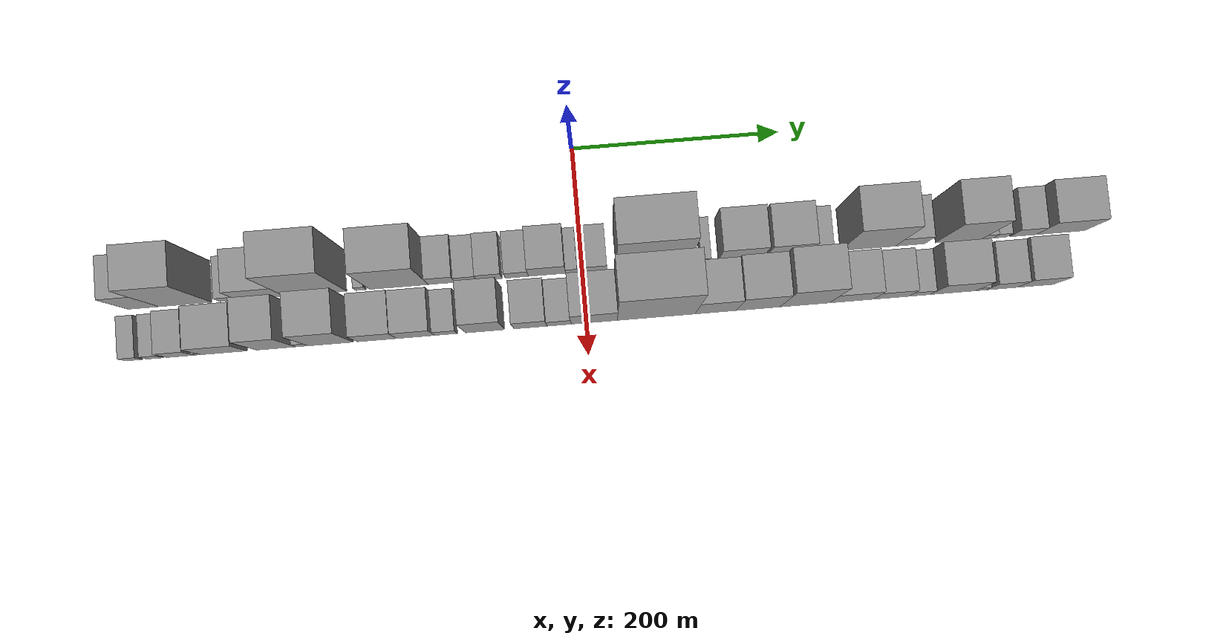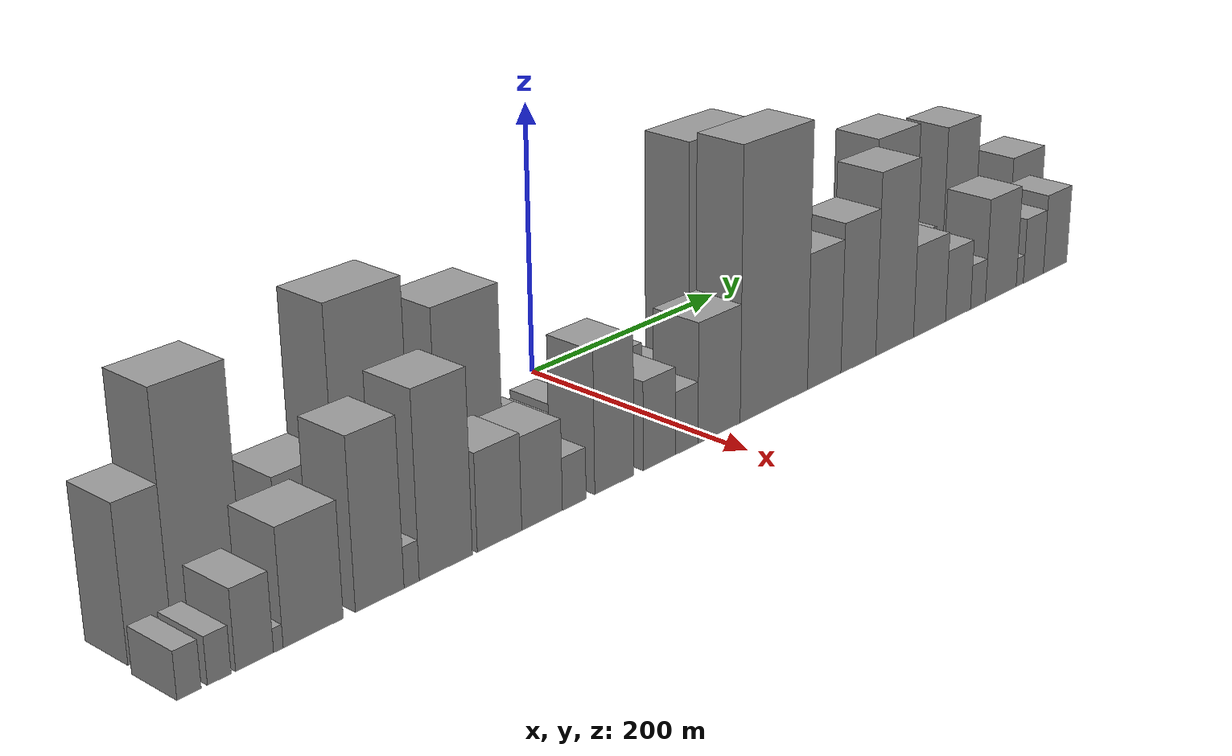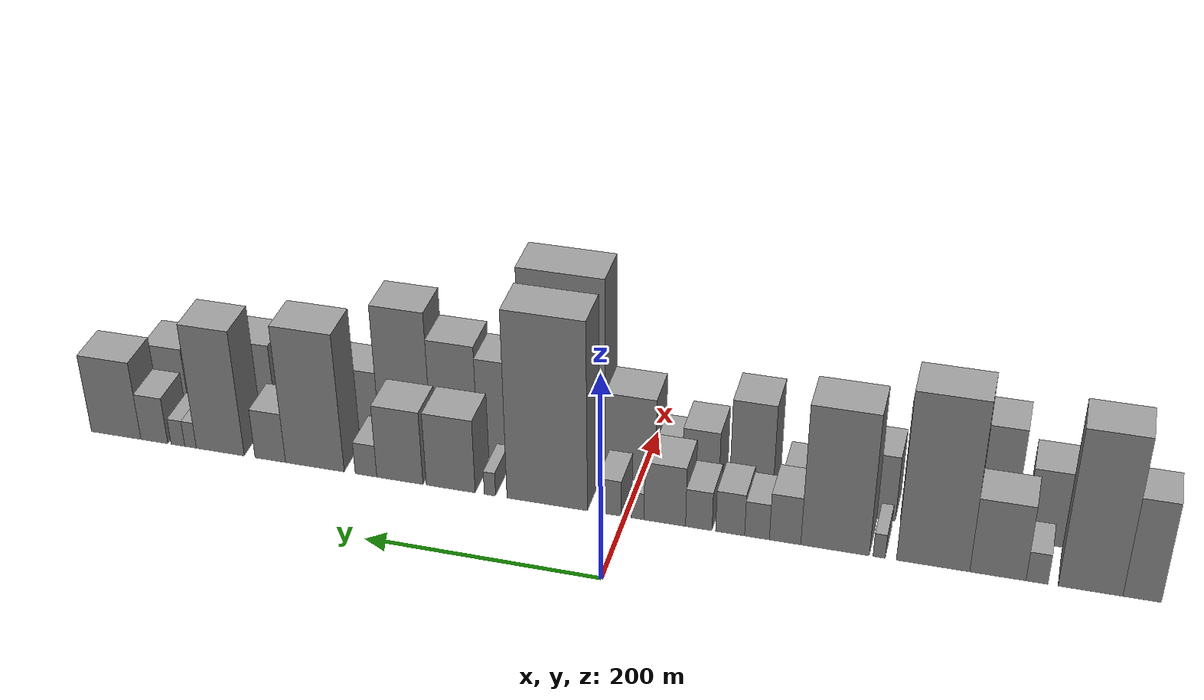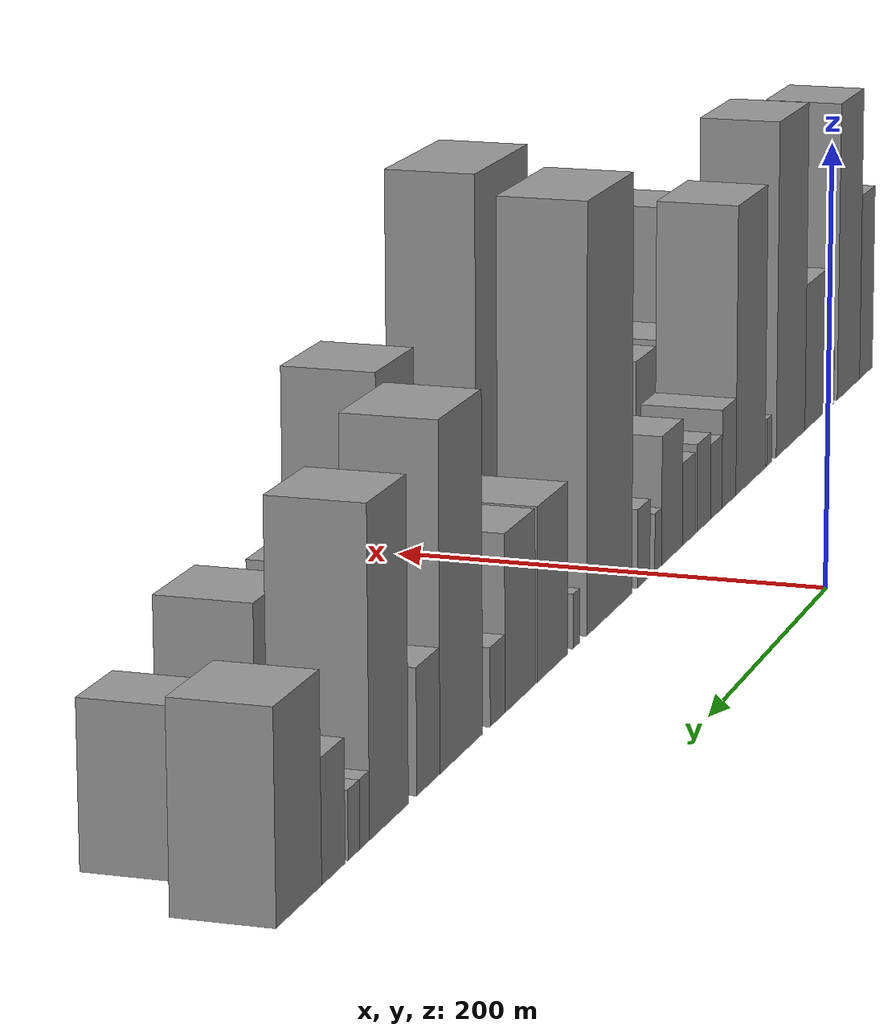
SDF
<sdf version="1.6">
 <world name="default">
  <scene>
   <sky><clouds><speed>12</speed></clouds></sky>
   <ambient>0.4 0.4 0.4 1</ambient>
   <background>0.7 0.7 0.7 1</background>
   <shadows>1</shadows>
  </scene>
  <gravity>0 0 -9.8066</gravity>
  <magnetic_field>6e-06 2.3e-05 -4.2e-05</magnetic_field>
  <physics default="0" name="default_physics" type="ode">
   <ode>
    <solver>
     <type>quick</type>
     <iters>10</iters>
     <sor>1.0</sor>
     <use_dynamic_moi_rescaling>0</use_dynamic_moi_rescaling>
    </solver>
    <constraints>
     <cfm>0</cfm>
     <erp>0.2</erp>
     <contact_max_correcting_vel>100</contact_max_correcting_vel>
     <contact_surface_layer>0.001</contact_surface_layer>
    </constraints>
   </ode>
   <max_step_size>0.004</max_step_size>
   <real_time_factor>1</real_time_factor>
   <real_time_update_rate>250</real_time_update_rate>
  </physics>
  <light name="sun" type="directional">
   <pose>0 0 10 0 0 0</pose>
   <diffuse>0.8 0.8 0.8 1</diffuse>
   <specular>0.2 0.2 0.2 1</specular>
   <attenuation>
    <range>1000</range>
    <constant>0.9</constant>
    <linear>0.01</linear>
    <quadratic>0.001</quadratic>
   </attenuation>
   <direction>-0.5 0.1 -0.9</direction>
  </light>
  <model name="building_1">
   <static>1</static>
   <pose>100.0000 -419.1449 0 0.000000 0.000000 0.000000</pose>
   <link name="link">
    <pose>0 0 49.50 0 0 0</pose>
    <collision name="collision"><geometry><box><size>40.0000 29.7102 99.0000</size></box></geometry></collision>
    <visual name="visual">
     <cast_shadows>0</cast_shadows>
     <geometry><box><size>40.0000 29.7102 99.0000</size></box></geometry>
     <material>
      <script>
       <uri>model://grey_wall/materials/scripts</uri>
       <uri>model://grey_wall/materials/textures</uri>
       <name>vrc/grey_wall</name>
      </script>
     </material>
    </visual>
   </link>
  </model>
  <model name="building_2">
   <static>1</static>
   <pose>100.0000 -379.1025 0 0.000000 0.000000 0.000000</pose>
   <link name="link">
    <pose>0 0 78.00 0 0 0</pose>
    <collision name="collision"><geometry><box><size>40.0000 50.3746 156.0000</size></box></geometry></collision>
    <visual name="visual">
     <cast_shadows>0</cast_shadows>
     <geometry><box><size>40.0000 50.3746 156.0000</size></box></geometry>
     <material>
      <script>
       <uri>model://grey_wall/materials/scripts</uri>
       <uri>model://grey_wall/materials/textures</uri>
       <name>vrc/grey_wall</name>
      </script>
     </material>
    </visual>
   </link>
  </model>
  <model name="building_3">
   <static>1</static>
   <pose>100.0000 -337.2954 0 0.000000 0.000000 0.000000</pose>
   <link name="link">
    <pose>0 0 15.00 0 0 0</pose>
    <collision name="collision"><geometry><box><size>40.0000 17.2396 30.0000</size></box></geometry></collision>
    <visual name="visual">
     <cast_shadows>0</cast_shadows>
     <geometry><box><size>40.0000 17.2396 30.0000</size></box></geometry>
     <material>
      <script>
       <uri>model://grey_wall/materials/scripts</uri>
       <uri>model://grey_wall/materials/textures</uri>
       <name>vrc/grey_wall</name>
      </script>
     </material>
    </visual>
   </link>
  </model>
  <model name="building_4">
   <static>1</static>
   <pose>100.0000 -306.3645 0 0.000000 0.000000 0.000000</pose>
   <link name="link">
    <pose>0 0 37.50 0 0 0</pose>
    <collision name="collision"><geometry><box><size>40.0000 44.6222 75.0000</size></box></geometry></collision>
    <visual name="visual">
     <cast_shadows>0</cast_shadows>
     <geometry><box><size>40.0000 44.6222 75.0000</size></box></geometry>
     <material>
      <script>
       <uri>model://grey_wall/materials/scripts</uri>
       <uri>model://grey_wall/materials/textures</uri>
       <name>vrc/grey_wall</name>
      </script>
     </material>
    </visual>
   </link>
  </model>
  <model name="building_5">
   <static>1</static>
   <pose>100.0000 -254.5861 0 0.000000 0.000000 0.000000</pose>
   <link name="link">
    <pose>0 0 84.00 0 0 0</pose>
    <collision name="collision"><geometry><box><size>40.0000 58.9345 168.0000</size></box></geometry></collision>
    <visual name="visual">
     <cast_shadows>0</cast_shadows>
     <geometry><box><size>40.0000 58.9345 168.0000</size></box></geometry>
     <material>
      <script>
       <uri>model://grey_wall/materials/scripts</uri>
       <uri>model://grey_wall/materials/textures</uri>
       <name>vrc/grey_wall</name>
      </script>
     </material>
    </visual>
   </link>
  </model>
  <model name="building_6">
   <static>1</static>
   <pose>100.0000 -211.1218 0 0.000000 0.000000 0.000000</pose>
   <link name="link">
    <pose>0 0 12.00 0 0 0</pose>
    <collision name="collision"><geometry><box><size>40.0000 9.9941 24.0000</size></box></geometry></collision>
    <visual name="visual">
     <cast_shadows>0</cast_shadows>
     <geometry><box><size>40.0000 9.9941 24.0000</size></box></geometry>
     <material>
      <script>
       <uri>model://grey_wall/materials/scripts</uri>
       <uri>model://grey_wall/materials/textures</uri>
       <name>vrc/grey_wall</name>
      </script>
     </material>
    </visual>
   </link>
  </model>
  <model name="building_7">
   <static>1</static>
   <pose>100.0000 -175.0322 0 0.000000 0.000000 0.000000</pose>
   <link name="link">
    <pose>0 0 70.50 0 0 0</pose>
    <collision name="collision"><geometry><box><size>40.0000 56.1850 141.0000</size></box></geometry></collision>
    <visual name="visual">
     <cast_shadows>0</cast_shadows>
     <geometry><box><size>40.0000 56.1850 141.0000</size></box></geometry>
     <material>
      <script>
       <uri>model://grey_wall/materials/scripts</uri>
       <uri>model://grey_wall/materials/textures</uri>
       <name>vrc/grey_wall</name>
      </script>
     </material>
    </visual>
   </link>
  </model>
  <model name="building_8">
   <static>1</static>
   <pose>100.0000 -133.9525 0 0.000000 0.000000 0.000000</pose>
   <link name="link">
    <pose>0 0 24.00 0 0 0</pose>
    <collision name="collision"><geometry><box><size>40.0000 25.9746 48.0000</size></box></geometry></collision>
    <visual name="visual">
     <cast_shadows>0</cast_shadows>
     <geometry><box><size>40.0000 25.9746 48.0000</size></box></geometry>
     <material>
      <script>
       <uri>model://grey_wall/materials/scripts</uri>
       <uri>model://grey_wall/materials/textures</uri>
       <name>vrc/grey_wall</name>
      </script>
     </material>
    </visual>
   </link>
  </model>
  <model name="building_9">
   <static>1</static>
   <pose>100.0000 -110.6520 0 0.000000 0.000000 0.000000</pose>
   <link name="link">
    <pose>0 0 18.00 0 0 0</pose>
    <collision name="collision"><geometry><box><size>40.0000 20.6263 36.0000</size></box></geometry></collision>
    <visual name="visual">
     <cast_shadows>0</cast_shadows>
     <geometry><box><size>40.0000 20.6263 36.0000</size></box></geometry>
     <material>
      <script>
       <uri>model://grey_wall/materials/scripts</uri>
       <uri>model://grey_wall/materials/textures</uri>
       <name>vrc/grey_wall</name>
      </script>
     </material>
    </visual>
   </link>
  </model>
  <model name="building_10">
   <static>1</static>
   <pose>100.0000 -88.2212 0 0.000000 0.000000 0.000000</pose>
   <link name="link">
    <pose>0 0 21.00 0 0 0</pose>
    <collision name="collision"><geometry><box><size>40.0000 24.2351 42.0000</size></box></geometry></collision>
    <visual name="visual">
     <cast_shadows>0</cast_shadows>
     <geometry><box><size>40.0000 24.2351 42.0000</size></box></geometry>
     <material>
      <script>
       <uri>model://grey_wall/materials/scripts</uri>
       <uri>model://grey_wall/materials/textures</uri>
       <name>vrc/grey_wall</name>
      </script>
     </material>
    </visual>
   </link>
  </model>
  <model name="building_11">
   <static>1</static>
   <pose>100.0000 -61.9417 0 0.000000 0.000000 0.000000</pose>
   <link name="link">
    <pose>0 0 19.50 0 0 0</pose>
    <collision name="collision"><geometry><box><size>40.0000 22.3239 39.0000</size></box></geometry></collision>
    <visual name="visual">
     <cast_shadows>0</cast_shadows>
     <geometry><box><size>40.0000 22.3239 39.0000</size></box></geometry>
     <material>
      <script>
       <uri>model://grey_wall/materials/scripts</uri>
       <uri>model://grey_wall/materials/textures</uri>
       <name>vrc/grey_wall</name>
      </script>
     </material>
    </visual>
   </link>
  </model>
  <model name="building_12">
   <static>1</static>
   <pose>100.0000 -33.1645 0 0.000000 0.000000 0.000000</pose>
   <link name="link">
    <pose>0 0 30.00 0 0 0</pose>
    <collision name="collision"><geometry><box><size>40.0000 35.2304 60.0000</size></box></geometry></collision>
    <visual name="visual">
     <cast_shadows>0</cast_shadows>
     <geometry><box><size>40.0000 35.2304 60.0000</size></box></geometry>
     <material>
      <script>
       <uri>model://grey_wall/materials/scripts</uri>
       <uri>model://grey_wall/materials/textures</uri>
       <name>vrc/grey_wall</name>
      </script>
     </material>
    </visual>
   </link>
  </model>
  <model name="building_13">
   <static>1</static>
   <pose>100.0000 -9.8632 0 0.000000 0.000000 0.000000</pose>
   <link name="link">
    <pose>0 0 13.50 0 0 0</pose>
    <collision name="collision"><geometry><box><size>40.0000 11.3722 27.0000</size></box></geometry></collision>
    <visual name="visual">
     <cast_shadows>0</cast_shadows>
     <geometry><box><size>40.0000 11.3722 27.0000</size></box></geometry>
     <material>
      <script>
       <uri>model://grey_wall/materials/scripts</uri>
       <uri>model://grey_wall/materials/textures</uri>
       <name>vrc/grey_wall</name>
      </script>
     </material>
    </visual>
   </link>
  </model>
  <model name="building_14">
   <static>1</static>
   <pose>100.0000 13.8502 0 0.000000 0.000000 0.000000</pose>
   <link name="link">
    <pose>0 0 18.00 0 0 0</pose>
    <collision name="collision"><geometry><box><size>40.0000 20.0548 36.0000</size></box></geometry></collision>
    <visual name="visual">
     <cast_shadows>0</cast_shadows>
     <geometry><box><size>40.0000 20.0548 36.0000</size></box></geometry>
     <material>
      <script>
       <uri>model://grey_wall/materials/scripts</uri>
       <uri>model://grey_wall/materials/textures</uri>
       <name>vrc/grey_wall</name>
      </script>
     </material>
    </visual>
   </link>
  </model>
  <model name="building_15">
   <static>1</static>
   <pose>100.0000 67.8860 0 0.000000 0.000000 0.000000</pose>
   <link name="link">
    <pose>0 0 94.50 0 0 0</pose>
    <collision name="collision"><geometry><box><size>40.0000 70.0167 189.0000</size></box></geometry></collision>
    <visual name="visual">
     <cast_shadows>0</cast_shadows>
     <geometry><box><size>40.0000 70.0167 189.0000</size></box></geometry>
     <material>
      <script>
       <uri>model://grey_wall/materials/scripts</uri>
       <uri>model://grey_wall/materials/textures</uri>
       <name>vrc/grey_wall</name>
      </script>
     </material>
    </visual>
   </link>
  </model>
  <model name="building_16">
   <static>1</static>
   <pose>100.0000 117.8698 0 0.000000 0.000000 0.000000</pose>
   <link name="link">
    <pose>0 0 12.00 0 0 0</pose>
    <collision name="collision"><geometry><box><size>40.0000 9.9509 24.0000</size></box></geometry></collision>
    <visual name="visual">
     <cast_shadows>0</cast_shadows>
     <geometry><box><size>40.0000 9.9509 24.0000</size></box></geometry>
     <material>
      <script>
       <uri>model://grey_wall/materials/scripts</uri>
       <uri>model://grey_wall/materials/textures</uri>
       <name>vrc/grey_wall</name>
      </script>
     </material>
    </visual>
   </link>
  </model>
  <model name="building_17">
   <static>1</static>
   <pose>100.0000 152.5142 0 0.000000 0.000000 0.000000</pose>
   <link name="link">
    <pose>0 0 37.50 0 0 0</pose>
    <collision name="collision"><geometry><box><size>40.0000 43.3380 75.0000</size></box></geometry></collision>
    <visual name="visual">
     <cast_shadows>0</cast_shadows>
     <geometry><box><size>40.0000 43.3380 75.0000</size></box></geometry>
     <material>
      <script>
       <uri>model://grey_wall/materials/scripts</uri>
       <uri>model://grey_wall/materials/textures</uri>
       <name>vrc/grey_wall</name>
      </script>
     </material>
    </visual>
   </link>
  </model>
  <model name="building_18">
   <static>1</static>
   <pose>100.0000 197.8956 0 0.000000 0.000000 0.000000</pose>
   <link name="link">
    <pose>0 0 37.50 0 0 0</pose>
    <collision name="collision"><geometry><box><size>40.0000 41.4249 75.0000</size></box></geometry></collision>
    <visual name="visual">
     <cast_shadows>0</cast_shadows>
     <geometry><box><size>40.0000 41.4249 75.0000</size></box></geometry>
     <material>
      <script>
       <uri>model://grey_wall/materials/scripts</uri>
       <uri>model://grey_wall/materials/textures</uri>
       <name>vrc/grey_wall</name>
      </script>
     </material>
    </visual>
   </link>
  </model>
  <model name="building_19">
   <static>1</static>
   <pose>100.0000 228.3364 0 0.000000 0.000000 0.000000</pose>
   <link name="link">
    <pose>0 0 16.50 0 0 0</pose>
    <collision name="collision"><geometry><box><size>40.0000 19.4566 33.0000</size></box></geometry></collision>
    <visual name="visual">
     <cast_shadows>0</cast_shadows>
     <geometry><box><size>40.0000 19.4566 33.0000</size></box></geometry>
     <material>
      <script>
       <uri>model://grey_wall/materials/scripts</uri>
       <uri>model://grey_wall/materials/textures</uri>
       <name>vrc/grey_wall</name>
      </script>
     </material>
    </visual>
   </link>
  </model>
  <model name="building_20">
   <static>1</static>
   <pose>100.0000 274.8976 0 0.000000 0.000000 0.000000</pose>
   <link name="link">
    <pose>0 0 70.50 0 0 0</pose>
    <collision name="collision"><geometry><box><size>40.0000 53.6659 141.0000</size></box></geometry></collision>
    <visual name="visual">
     <cast_shadows>0</cast_shadows>
     <geometry><box><size>40.0000 53.6659 141.0000</size></box></geometry>
     <material>
      <script>
       <uri>model://grey_wall/materials/scripts</uri>
       <uri>model://grey_wall/materials/textures</uri>
       <name>vrc/grey_wall</name>
      </script>
     </material>
    </visual>
   </link>
  </model>
  <model name="building_21">
   <static>1</static>
   <pose>100.0000 315.7406 0 0.000000 0.000000 0.000000</pose>
   <link name="link">
    <pose>0 0 25.50 0 0 0</pose>
    <collision name="collision"><geometry><box><size>40.0000 28.0201 51.0000</size></box></geometry></collision>
    <visual name="visual">
     <cast_shadows>0</cast_shadows>
     <geometry><box><size>40.0000 28.0201 51.0000</size></box></geometry>
     <material>
      <script>
       <uri>model://grey_wall/materials/scripts</uri>
       <uri>model://grey_wall/materials/textures</uri>
       <name>vrc/grey_wall</name>
      </script>
     </material>
    </visual>
   </link>
  </model>
  <model name="building_22">
   <static>1</static>
   <pose>100.0000 362.1155 0 0.000000 0.000000 0.000000</pose>
   <link name="link">
    <pose>0 0 64.50 0 0 0</pose>
    <collision name="collision"><geometry><box><size>40.0000 44.7296 129.0000</size></box></geometry></collision>
    <visual name="visual">
     <cast_shadows>0</cast_shadows>
     <geometry><box><size>40.0000 44.7296 129.0000</size></box></geometry>
     <material>
      <script>
       <uri>model://grey_wall/materials/scripts</uri>
       <uri>model://grey_wall/materials/textures</uri>
       <name>vrc/grey_wall</name>
      </script>
     </material>
    </visual>
   </link>
  </model>
  <model name="building_23">
   <static>1</static>
   <pose>100.0000 389.9124 0 0.000000 0.000000 0.000000</pose>
   <link name="link">
    <pose>0 0 13.50 0 0 0</pose>
    <collision name="collision"><geometry><box><size>40.0000 10.8643 27.0000</size></box></geometry></collision>
    <visual name="visual">
     <cast_shadows>0</cast_shadows>
     <geometry><box><size>40.0000 10.8643 27.0000</size></box></geometry>
     <material>
      <script>
       <uri>model://grey_wall/materials/scripts</uri>
       <uri>model://grey_wall/materials/textures</uri>
       <name>vrc/grey_wall</name>
      </script>
     </material>
    </visual>
   </link>
  </model>
  <model name="building_24">
   <static>1</static>
   <pose>100.0000 401.8154 0 0.000000 0.000000 0.000000</pose>
   <link name="link">
    <pose>0 0 13.50 0 0 0</pose>
    <collision name="collision"><geometry><box><size>40.0000 12.9417 27.0000</size></box></geometry></collision>
    <visual name="visual">
     <cast_shadows>0</cast_shadows>
     <geometry><box><size>40.0000 12.9417 27.0000</size></box></geometry>
     <material>
      <script>
       <uri>model://grey_wall/materials/scripts</uri>
       <uri>model://grey_wall/materials/textures</uri>
       <name>vrc/grey_wall</name>
      </script>
     </material>
    </visual>
   </link>
  </model>
  <model name="building_25">
   <static>1</static>
   <pose>100.0000 424.0008 0 0.000000 0.000000 0.000000</pose>
   <link name="link">
    <pose>0 0 24.00 0 0 0</pose>
    <collision name="collision"><geometry><box><size>40.0000 25.4291 48.0000</size></box></geometry></collision>
    <visual name="visual">
     <cast_shadows>0</cast_shadows>
     <geometry><box><size>40.0000 25.4291 48.0000</size></box></geometry>
     <material>
      <script>
       <uri>model://grey_wall/materials/scripts</uri>
       <uri>model://grey_wall/materials/textures</uri>
       <name>vrc/grey_wall</name>
      </script>
     </material>
    </visual>
   </link>
  </model>
  <model name="building_26">
   <static>1</static>
   <pose>100.0000 460.2404 0 0.000000 0.000000 0.000000</pose>
   <link name="link">
    <pose>0 0 40.50 0 0 0</pose>
    <collision name="collision"><geometry><box><size>40.0000 47.0500 81.0000</size></box></geometry></collision>
    <visual name="visual">
     <cast_shadows>0</cast_shadows>
     <geometry><box><size>40.0000 47.0500 81.0000</size></box></geometry>
     <material>
      <script>
       <uri>model://grey_wall/materials/scripts</uri>
       <uri>model://grey_wall/materials/textures</uri>
       <name>vrc/grey_wall</name>
      </script>
     </material>
    </visual>
   </link>
  </model>
  <model name="building_27">
   <static>1</static>
   <pose>149.0000 -430.0096 0 0.000000 0.000000 0.000000</pose>
   <link name="link">
    <pose>0 0 15.00 0 0 0</pose>
    <collision name="collision"><geometry><box><size>40.0000 15.9809 30.0000</size></box></geometry></collision>
    <visual name="visual">
     <cast_shadows>0</cast_shadows>
     <geometry><box><size>40.0000 15.9809 30.0000</size></box></geometry>
     <material>
      <script>
       <uri>model://grey_wall/materials/scripts</uri>
       <uri>model://grey_wall/materials/textures</uri>
       <name>vrc/grey_wall</name>
      </script>
     </material>
    </visual>
   </link>
  </model>
  <model name="building_28">
   <static>1</static>
   <pose>149.0000 -410.0666 0 0.000000 0.000000 0.000000</pose>
   <link name="link">
    <pose>0 0 15.00 0 0 0</pose>
    <collision name="collision"><geometry><box><size>40.0000 15.9052 30.0000</size></box></geometry></collision>
    <visual name="visual">
     <cast_shadows>0</cast_shadows>
     <geometry><box><size>40.0000 15.9052 30.0000</size></box></geometry>
     <material>
      <script>
       <uri>model://grey_wall/materials/scripts</uri>
       <uri>model://grey_wall/materials/textures</uri>
       <name>vrc/grey_wall</name>
      </script>
     </material>
    </visual>
   </link>
  </model>
  <model name="building_29">
   <static>1</static>
   <pose>149.0000 -386.0494 0 0.000000 0.000000 0.000000</pose>
   <link name="link">
    <pose>0 0 25.50 0 0 0</pose>
    <collision name="collision"><geometry><box><size>40.0000 26.1292 51.0000</size></box></geometry></collision>
    <visual name="visual">
     <cast_shadows>0</cast_shadows>
     <geometry><box><size>40.0000 26.1292 51.0000</size></box></geometry>
     <material>
      <script>
       <uri>model://grey_wall/materials/scripts</uri>
       <uri>model://grey_wall/materials/textures</uri>
       <name>vrc/grey_wall</name>
      </script>
     </material>
    </visual>
   </link>
  </model>
  <model name="building_30">
   <static>1</static>
   <pose>149.0000 -369.6076 0 0.000000 0.000000 0.000000</pose>
   <link name="link">
    <pose>0 0 7.50 0 0 0</pose>
    <collision name="collision"><geometry><box><size>40.0000 6.7543 15.0000</size></box></geometry></collision>
    <visual name="visual">
     <cast_shadows>0</cast_shadows>
     <geometry><box><size>40.0000 6.7543 15.0000</size></box></geometry>
     <material>
      <script>
       <uri>model://grey_wall/materials/scripts</uri>
       <uri>model://grey_wall/materials/textures</uri>
       <name>vrc/grey_wall</name>
      </script>
     </material>
    </visual>
   </link>
  </model>
  <model name="building_31">
   <static>1</static>
   <pose>149.0000 -344.5465 0 0.000000 0.000000 0.000000</pose>
   <link name="link">
    <pose>0 0 37.50 0 0 0</pose>
    <collision name="collision"><geometry><box><size>40.0000 43.3679 75.0000</size></box></geometry></collision>
    <visual name="visual">
     <cast_shadows>0</cast_shadows>
     <geometry><box><size>40.0000 43.3679 75.0000</size></box></geometry>
     <material>
      <script>
       <uri>model://grey_wall/materials/scripts</uri>
       <uri>model://grey_wall/materials/textures</uri>
       <name>vrc/grey_wall</name>
      </script>
     </material>
    </visual>
   </link>
  </model>
  <model name="building_32">
   <static>1</static>
   <pose>149.0000 -295.2704 0 0.000000 0.000000 0.000000</pose>
   <link name="link">
    <pose>0 0 55.50 0 0 0</pose>
    <collision name="collision"><geometry><box><size>40.0000 37.1843 111.0000</size></box></geometry></collision>
    <visual name="visual">
     <cast_shadows>0</cast_shadows>
     <geometry><box><size>40.0000 37.1843 111.0000</size></box></geometry>
     <material>
      <script>
       <uri>model://grey_wall/materials/scripts</uri>
       <uri>model://grey_wall/materials/textures</uri>
       <name>vrc/grey_wall</name>
      </script>
     </material>
    </visual>
   </link>
  </model>
  <model name="building_33">
   <static>1</static>
   <pose>149.0000 -270.7021 0 0.000000 0.000000 0.000000</pose>
   <link name="link">
    <pose>0 0 13.50 0 0 0</pose>
    <collision name="collision"><geometry><box><size>40.0000 11.9523 27.0000</size></box></geometry></collision>
    <visual name="visual">
     <cast_shadows>0</cast_shadows>
     <geometry><box><size>40.0000 11.9523 27.0000</size></box></geometry>
     <material>
      <script>
       <uri>model://grey_wall/materials/scripts</uri>
       <uri>model://grey_wall/materials/textures</uri>
       <name>vrc/grey_wall</name>
      </script>
     </material>
    </visual>
   </link>
  </model>
  <model name="building_34">
   <static>1</static>
   <pose>149.0000 -243.2420 0 0.000000 0.000000 0.000000</pose>
   <link name="link">
    <pose>0 0 61.50 0 0 0</pose>
    <collision name="collision"><geometry><box><size>40.0000 42.9679 123.0000</size></box></geometry></collision>
    <visual name="visual">
     <cast_shadows>0</cast_shadows>
     <geometry><box><size>40.0000 42.9679 123.0000</size></box></geometry>
     <material>
      <script>
       <uri>model://grey_wall/materials/scripts</uri>
       <uri>model://grey_wall/materials/textures</uri>
       <name>vrc/grey_wall</name>
      </script>
     </material>
    </visual>
   </link>
  </model>
  <model name="building_35">
   <static>1</static>
   <pose>149.0000 -198.8711 0 0.000000 0.000000 0.000000</pose>
   <link name="link">
    <pose>0 0 33.00 0 0 0</pose>
    <collision name="collision"><geometry><box><size>40.0000 37.7739 66.0000</size></box></geometry></collision>
    <visual name="visual">
     <cast_shadows>0</cast_shadows>
     <geometry><box><size>40.0000 37.7739 66.0000</size></box></geometry>
     <material>
      <script>
       <uri>model://grey_wall/materials/scripts</uri>
       <uri>model://grey_wall/materials/textures</uri>
       <name>vrc/grey_wall</name>
      </script>
     </material>
    </visual>
   </link>
  </model>
  <model name="building_36">
   <static>1</static>
   <pose>149.0000 -162.0549 0 0.000000 0.000000 0.000000</pose>
   <link name="link">
    <pose>0 0 31.50 0 0 0</pose>
    <collision name="collision"><geometry><box><size>40.0000 35.8585 63.0000</size></box></geometry></collision>
    <visual name="visual">
     <cast_shadows>0</cast_shadows>
     <geometry><box><size>40.0000 35.8585 63.0000</size></box></geometry>
     <material>
      <script>
       <uri>model://grey_wall/materials/scripts</uri>
       <uri>model://grey_wall/materials/textures</uri>
       <name>vrc/grey_wall</name>
      </script>
     </material>
    </visual>
   </link>
  </model>
  <model name="building_37">
   <static>1</static>
   <pose>149.0000 -133.3609 0 0.000000 0.000000 0.000000</pose>
   <link name="link">
    <pose>0 0 18.00 0 0 0</pose>
    <collision name="collision"><geometry><box><size>40.0000 21.5295 36.0000</size></box></geometry></collision>
    <visual name="visual">
     <cast_shadows>0</cast_shadows>
     <geometry><box><size>40.0000 21.5295 36.0000</size></box></geometry>
     <material>
      <script>
       <uri>model://grey_wall/materials/scripts</uri>
       <uri>model://grey_wall/materials/textures</uri>
       <name>vrc/grey_wall</name>
      </script>
     </material>
    </visual>
   </link>
  </model>
  <model name="building_38">
   <static>1</static>
   <pose>149.0000 -96.1012 0 0.000000 0.000000 0.000000</pose>
   <link name="link">
    <pose>0 0 49.50 0 0 0</pose>
    <collision name="collision"><geometry><box><size>40.0000 36.9900 99.0000</size></box></geometry></collision>
    <visual name="visual">
     <cast_shadows>0</cast_shadows>
     <geometry><box><size>40.0000 36.9900 99.0000</size></box></geometry>
     <material>
      <script>
       <uri>model://grey_wall/materials/scripts</uri>
       <uri>model://grey_wall/materials/textures</uri>
       <name>vrc/grey_wall</name>
      </script>
     </material>
    </visual>
   </link>
  </model>
  <model name="building_39">
   <static>1</static>
   <pose>149.0000 -52.7974 0 0.000000 0.000000 0.000000</pose>
   <link name="link">
    <pose>0 0 31.50 0 0 0</pose>
    <collision name="collision"><geometry><box><size>40.0000 31.6176 63.0000</size></box></geometry></collision>
    <visual name="visual">
     <cast_shadows>0</cast_shadows>
     <geometry><box><size>40.0000 31.6176 63.0000</size></box></geometry>
     <material>
      <script>
       <uri>model://grey_wall/materials/scripts</uri>
       <uri>model://grey_wall/materials/textures</uri>
       <name>vrc/grey_wall</name>
      </script>
     </material>
    </visual>
   </link>
  </model>
  <model name="building_40">
   <static>1</static>
   <pose>149.0000 -25.4999 0 0.000000 0.000000 0.000000</pose>
   <link name="link">
    <pose>0 0 22.50 0 0 0</pose>
    <collision name="collision"><geometry><box><size>40.0000 22.9774 45.0000</size></box></geometry></collision>
    <visual name="visual">
     <cast_shadows>0</cast_shadows>
     <geometry><box><size>40.0000 22.9774 45.0000</size></box></geometry>
     <material>
      <script>
       <uri>model://grey_wall/materials/scripts</uri>
       <uri>model://grey_wall/materials/textures</uri>
       <name>vrc/grey_wall</name>
      </script>
     </material>
    </visual>
   </link>
  </model>
  <model name="building_41">
   <static>1</static>
   <pose>149.0000 7.9740 0 0.000000 0.000000 0.000000</pose>
   <link name="link">
    <pose>0 0 43.50 0 0 0</pose>
    <collision name="collision"><geometry><box><size>40.0000 43.9704 87.0000</size></box></geometry></collision>
    <visual name="visual">
     <cast_shadows>0</cast_shadows>
     <geometry><box><size>40.0000 43.9704 87.0000</size></box></geometry>
     <material>
      <script>
       <uri>model://grey_wall/materials/scripts</uri>
       <uri>model://grey_wall/materials/textures</uri>
       <name>vrc/grey_wall</name>
      </script>
     </material>
    </visual>
   </link>
  </model>
  <model name="building_42">
   <static>1</static>
   <pose>149.0000 67.1423 0 0.000000 0.000000 0.000000</pose>
   <link name="link">
    <pose>0 0 99.00 0 0 0</pose>
    <collision name="collision"><geometry><box><size>40.0000 74.3661 198.0000</size></box></geometry></collision>
    <visual name="visual">
     <cast_shadows>0</cast_shadows>
     <geometry><box><size>40.0000 74.3661 198.0000</size></box></geometry>
     <material>
      <script>
       <uri>model://grey_wall/materials/scripts</uri>
       <uri>model://grey_wall/materials/textures</uri>
       <name>vrc/grey_wall</name>
      </script>
     </material>
    </visual>
   </link>
  </model>
  <model name="building_43">
   <static>1</static>
   <pose>149.0000 123.8424 0 0.000000 0.000000 0.000000</pose>
   <link name="link">
    <pose>0 0 51.00 0 0 0</pose>
    <collision name="collision"><geometry><box><size>40.0000 39.0342 102.0000</size></box></geometry></collision>
    <visual name="visual">
     <cast_shadows>0</cast_shadows>
     <geometry><box><size>40.0000 39.0342 102.0000</size></box></geometry>
     <material>
      <script>
       <uri>model://grey_wall/materials/scripts</uri>
       <uri>model://grey_wall/materials/textures</uri>
       <name>vrc/grey_wall</name>
      </script>
     </material>
    </visual>
   </link>
  </model>
  <model name="building_44">
   <static>1</static>
   <pose>149.0000 164.4365 0 0.000000 0.000000 0.000000</pose>
   <link name="link">
    <pose>0 0 57.00 0 0 0</pose>
    <collision name="collision"><geometry><box><size>40.0000 42.1540 114.0000</size></box></geometry></collision>
    <visual name="visual">
     <cast_shadows>0</cast_shadows>
     <geometry><box><size>40.0000 42.1540 114.0000</size></box></geometry>
     <material>
      <script>
       <uri>model://grey_wall/materials/scripts</uri>
       <uri>model://grey_wall/materials/textures</uri>
       <name>vrc/grey_wall</name>
      </script>
     </material>
    </visual>
   </link>
  </model>
  <model name="building_45">
   <static>1</static>
   <pose>149.0000 209.2489 0 0.000000 0.000000 0.000000</pose>
   <link name="link">
    <pose>0 0 70.50 0 0 0</pose>
    <collision name="collision"><geometry><box><size>40.0000 47.4707 141.0000</size></box></geometry></collision>
    <visual name="visual">
     <cast_shadows>0</cast_shadows>
     <geometry><box><size>40.0000 47.4707 141.0000</size></box></geometry>
     <material>
      <script>
       <uri>model://grey_wall/materials/scripts</uri>
       <uri>model://grey_wall/materials/textures</uri>
       <name>vrc/grey_wall</name>
      </script>
     </material>
    </visual>
   </link>
  </model>
  <model name="building_46">
   <static>1</static>
   <pose>149.0000 253.9406 0 0.000000 0.000000 0.000000</pose>
   <link name="link">
    <pose>0 0 36.00 0 0 0</pose>
    <collision name="collision"><geometry><box><size>40.0000 41.9126 72.0000</size></box></geometry></collision>
    <visual name="visual">
     <cast_shadows>0</cast_shadows>
     <geometry><box><size>40.0000 41.9126 72.0000</size></box></geometry>
     <material>
      <script>
       <uri>model://grey_wall/materials/scripts</uri>
       <uri>model://grey_wall/materials/textures</uri>
       <name>vrc/grey_wall</name>
      </script>
     </material>
    </visual>
   </link>
  </model>
  <model name="building_47">
   <static>1</static>
   <pose>149.0000 291.7603 0 0.000000 0.000000 0.000000</pose>
   <link name="link">
    <pose>0 0 28.50 0 0 0</pose>
    <collision name="collision"><geometry><box><size>40.0000 33.7269 57.0000</size></box></geometry></collision>
    <visual name="visual">
     <cast_shadows>0</cast_shadows>
     <geometry><box><size>40.0000 33.7269 57.0000</size></box></geometry>
     <material>
      <script>
       <uri>model://grey_wall/materials/scripts</uri>
       <uri>model://grey_wall/materials/textures</uri>
       <name>vrc/grey_wall</name>
      </script>
     </material>
    </visual>
   </link>
  </model>
  <model name="building_48">
   <static>1</static>
   <pose>149.0000 318.8732 0 0.000000 0.000000 0.000000</pose>
   <link name="link">
    <pose>0 0 18.00 0 0 0</pose>
    <collision name="collision"><geometry><box><size>40.0000 20.4989 36.0000</size></box></geometry></collision>
    <visual name="visual">
     <cast_shadows>0</cast_shadows>
     <geometry><box><size>40.0000 20.4989 36.0000</size></box></geometry>
     <material>
      <script>
       <uri>model://grey_wall/materials/scripts</uri>
       <uri>model://grey_wall/materials/textures</uri>
       <name>vrc/grey_wall</name>
      </script>
     </material>
    </visual>
   </link>
  </model>
  <model name="building_49">
   <static>1</static>
   <pose>149.0000 351.0119 0 0.000000 0.000000 0.000000</pose>
   <link name="link">
    <pose>0 0 42.00 0 0 0</pose>
    <collision name="collision"><geometry><box><size>40.0000 43.7784 84.0000</size></box></geometry></collision>
    <visual name="visual">
     <cast_shadows>0</cast_shadows>
     <geometry><box><size>40.0000 43.7784 84.0000</size></box></geometry>
     <material>
      <script>
       <uri>model://grey_wall/materials/scripts</uri>
       <uri>model://grey_wall/materials/textures</uri>
       <name>vrc/grey_wall</name>
      </script>
     </material>
    </visual>
   </link>
  </model>
  <model name="building_50">
   <static>1</static>
   <pose>149.0000 378.0453 0 0.000000 0.000000 0.000000</pose>
   <link name="link">
    <pose>0 0 12.00 0 0 0</pose>
    <collision name="collision"><geometry><box><size>40.0000 10.2883 24.0000</size></box></geometry></collision>
    <visual name="visual">
     <cast_shadows>0</cast_shadows>
     <geometry><box><size>40.0000 10.2883 24.0000</size></box></geometry>
     <material>
      <script>
       <uri>model://grey_wall/materials/scripts</uri>
       <uri>model://grey_wall/materials/textures</uri>
       <name>vrc/grey_wall</name>
      </script>
     </material>
    </visual>
   </link>
  </model>
  <model name="building_51">
   <static>1</static>
   <pose>149.0000 398.0128 0 0.000000 0.000000 0.000000</pose>
   <link name="link">
    <pose>0 0 27.00 0 0 0</pose>
    <collision name="collision"><geometry><box><size>40.0000 29.6467 54.0000</size></box></geometry></collision>
    <visual name="visual">
     <cast_shadows>0</cast_shadows>
     <geometry><box><size>40.0000 29.6467 54.0000</size></box></geometry>
     <material>
      <script>
       <uri>model://grey_wall/materials/scripts</uri>
       <uri>model://grey_wall/materials/textures</uri>
       <name>vrc/grey_wall</name>
      </script>
     </material>
    </visual>
   </link>
  </model>
  <model name="building_52">
   <static>1</static>
   <pose>149.0000 430.4260 0 0.000000 0.000000 0.000000</pose>
   <link name="link">
    <pose>0 0 33.00 0 0 0</pose>
    <collision name="collision"><geometry><box><size>40.0000 35.1798 66.0000</size></box></geometry></collision>
    <visual name="visual">
     <cast_shadows>0</cast_shadows>
     <geometry><box><size>40.0000 35.1798 66.0000</size></box></geometry>
     <material>
      <script>
       <uri>model://grey_wall/materials/scripts</uri>
       <uri>model://grey_wall/materials/textures</uri>
       <name>vrc/grey_wall</name>
      </script>
     </material>
    </visual>
   </link>
  </model>
 </world>
</sdf>
